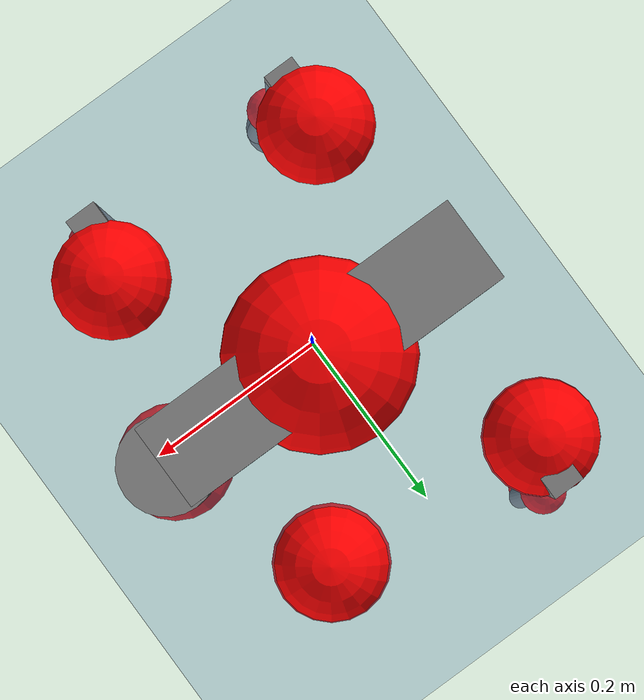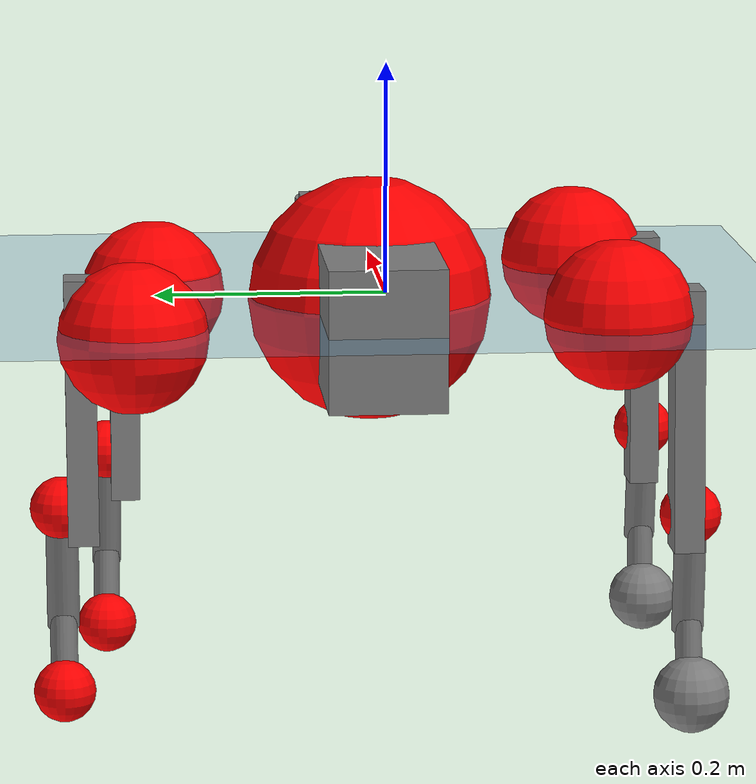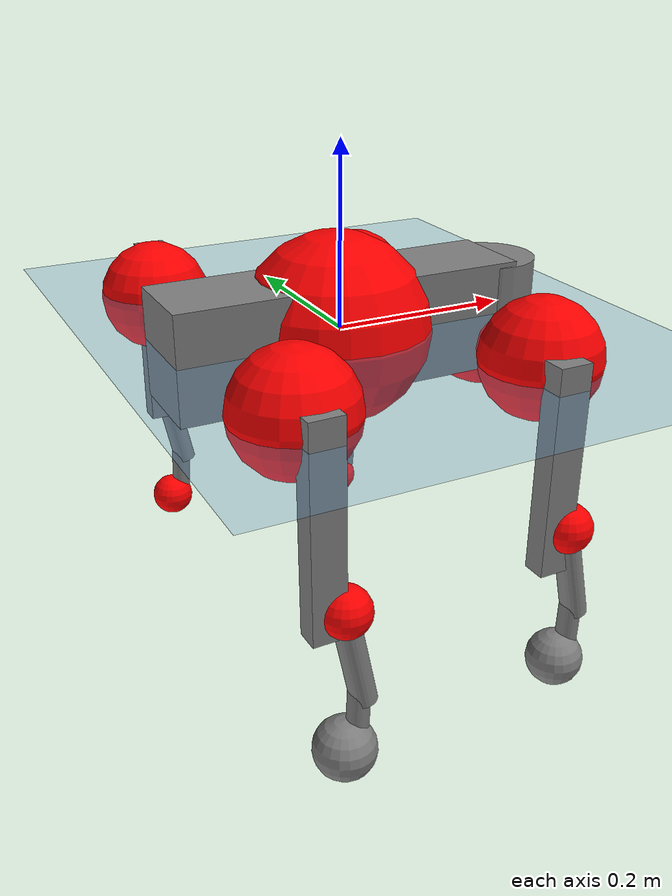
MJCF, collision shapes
<mujoco model="go2">
  <compiler angle="radian" assetdir="assets" balanceinertia="true" inertiafromgeom="false"/>

  <option timestep="0.005" density="1.2" viscosity="2e-05"/>

  <size nkey="1"/>

  <visual>
    <quality shadowsize="8192"/>
    <map shadowclip="0.5"/>
  </visual>

  <default>
    <default class="/">
      <geom contype="0" conaffinity="0" group="1" solref="-1000 -80"/>
      <site size="0.01 0.005 0.005" group="5"/>
      <general forcelimited="true" biastype="affine" gainprm="20" biasprm="0 -20 -0.5"/>
      <default class="go2">
        <joint armature="0.01" damping="0.01" frictionloss="0.2"/>
        <geom condim="1" margin="0.001"/>
        <default class="visual">
          <geom type="mesh" group="2"/>
        </default>
        <default class="collision">
          <geom group="3"/>
          <default class="foot">
            <geom size="0.022 0 0" condim="6" priority="1" friction="0.8 0.02 0.01" solimp="0.015 1 0.022"/>
          </default>
        </default>
        <default class="reward_collision_sphere">
          <geom group="5" rgba="1 0 0 1"/>
        </default>
      </default>
    </default>
  </default>

  <asset>
    <texture type="skybox" colorspace="auto" name="//unnamed_texture_0" builtin="gradient" rgb1="0.95 0.95 0.95" rgb2="0.95 0.95 0.95" width="100" height="600"/>
    <texture type="2d" colorspace="auto" name="texplane" builtin="checker" rgb1="0.345 0.575 0.748" rgb2="0.345 0.575 0.748" markrgb="1 1 1" width="512" height="512"/>
    <material name="MatPlane" class="/" texture="texplane" texuniform="true" texrepeat="2 2" specular="0.9"/>
    <material name="metal" class="/" rgba="0.9 0.95 0.95 1"/>
    <material name="black" class="/" rgba="0 0 0 1"/>
    <material name="white" class="/"/>
    <material name="gray" class="/" rgba="0.671705 0.692426 0.77427 1"/>
    <mesh name="base_0" class="/" file="base_0.obj"/>
    <mesh name="base_1" class="/" file="base_1.obj"/>
    <mesh name="base_2" class="/" file="base_2.obj"/>
    <mesh name="base_3" class="/" file="base_3.obj"/>
    <mesh name="base_4" class="/" file="base_4.obj"/>
    <mesh name="hip_0" class="/" file="hip_0.obj"/>
    <mesh name="hip_1" class="/" file="hip_1.obj"/>
    <mesh name="thigh_0" class="/" file="thigh_0.obj"/>
    <mesh name="thigh_1" class="/" file="thigh_1.obj"/>
    <mesh name="thigh_mirror_0" class="/" file="thigh_mirror_0.obj"/>
    <mesh name="thigh_mirror_1" class="/" file="thigh_mirror_1.obj"/>
    <mesh name="calf_0" class="/" file="calf_0.obj"/>
    <mesh name="calf_1" class="/" file="calf_1.obj"/>
    <mesh name="calf_mirror_0" class="/" file="calf_mirror_0.obj"/>
    <mesh name="calf_mirror_1" class="/" file="calf_mirror_1.obj"/>
    <mesh name="foot" class="/" file="foot.obj"/>
  </asset>

  <worldbody>
    <geom name="floor" class="/" size="100 100 0.125" type="plane" group="0" material="MatPlane"/>
    <light name="toplight_shadow" class="/" pos="0 0 5" dir="0.0990148 0.0990148 -0.990148" type="directional" ambient="0.04 0.04 0.04" diffuse="0.55 0.55 0.55" specular="0.12 0.12 0.12"/>
    <light name="toplight_fill" class="/" pos="0 0 5" dir="0.0990148 0.0990148 -0.990148" type="directional" castshadow="false" ambient="0.04 0.04 0.04" diffuse="0.3 0.3 0.3" specular="0.08 0.08 0.08"/>
    <body name="trunk" childclass="go2" pos="0.00139324 0.0139007 -0.0042071" quat="1 -0.000142119 -0.000153139 -6.17188e-05">
      <inertial pos="0.00669493 0.0146546 -0.000979662" quat="0.0579417 0.698866 -0.0719199 0.709264" mass="8.25052" diaginertia="0.0178192 1.8414 0.00573778"/>
      <joint name="//unnamed_joint_0" type="free" armature="0" damping="0" frictionloss="0"/>
      <geom name="//unnamed_geom_1" class="visual" material="black" mesh="base_0"/>
      <geom name="//unnamed_geom_2" class="visual" material="black" mesh="base_1"/>
      <geom name="//unnamed_geom_3" class="visual" material="black" mesh="base_2"/>
      <geom name="//unnamed_geom_4" class="visual" material="white" mesh="base_3"/>
      <geom name="//unnamed_geom_5" class="visual" material="gray" mesh="base_4"/>
      <geom name="trunk_1" class="collision" size="0.198931 0.0494418 0.060282" type="box"/>
      <geom name="trunk_2" class="collision" size="0.0528789 0.047591" pos="0.194699 0 0.00749937" type="cylinder"/>
      <geom name="trunk_3" class="collision" size="0.0497062" pos="0.200165 0 -0.0449962"/>
      <geom name="//unnamed_geom_9" class="reward_collision_sphere" size="0.105758"/>
      <geom name="//unnamed_geom_10" class="reward_collision_sphere" size="0.0634547" pos="0.191284 0 -0.0337472"/>
      <site name="imu" pos="-0.0852855 -0.0558746 0.10116" size="0.0105758"/>
      <camera name="track" pos="0 -3.47929 0" quat="0.707107 0.707107 0 0" mode="trackcom"/>
      <camera name="ego_camera" pos="0.213145 0 0.0337472" quat="-0.5 -0.5 0.5 0.5"/>
      <body name="FL_hip" pos="0.119787 0.062772 -0.0158397" quat="0.999974 0.00236665 0.00673239 -0.000714649">
        <inertial pos="0.0016579 0.00363181 -0.0104309" quat="0.503013 0.488816 0.494182 0.513636" mass="0.971273" diaginertia="0.00012793 0.0103226 0.000108196"/>
        <joint name="FL_hip_joint" pos="0 0 0" axis="0.999978 0.00196369 -0.00629406" range="-1.416 0.832614" armature="0.0130522" damping="0.0783651" frictionloss="0.0795902"/>
        <geom name="//unnamed_geom_11" class="visual" material="metal" mesh="hip_0"/>
        <geom name="//unnamed_geom_12" class="visual" material="gray" mesh="hip_1"/>
        <geom name="//unnamed_geom_13" class="collision" size="0.0486486 0.0211516" pos="0 0.139171 0" quat="0.707107 0.707107 0 0" type="cylinder"/>
        <geom name="//unnamed_geom_14" class="reward_collision_sphere" size="0.0634547" pos="0 0.121775 0"/>
        <body name="FL_thigh" pos="-0.00158 0.147925 0.00614204" quat="0.999979 0.00118198 0.00373136 0.00517219">
          <inertial pos="-0.0155204 -0.0504282 -0.0298956" quat="0.792179 0.0522858 -0.0393503 0.60677" mass="1.35724" diaginertia="0.000801873 0.0885073 0.000219077"/>
          <joint name="FL_thigh_joint" pos="0 0 0" axis="-0.0157748 0.997495 -0.0689573" range="-1.77163 3.15974" armature="0.00291111" damping="0" frictionloss="0.11928"/>
          <geom name="//unnamed_geom_15" class="visual" material="metal" mesh="thigh_0"/>
          <geom name="//unnamed_geom_16" class="visual" material="gray" mesh="thigh_1"/>
          <geom name="//unnamed_geom_17" class="collision" size="0.112632 0.0129553 0.0179788" pos="0 0 -0.0798683" quat="0.707107 0 0.707107 0" type="box"/>
          <body name="FL_calf" pos="0.00796359 0.0163906 -0.151021" quat="0.999986 0.0025332 0.00283665 -0.00378155">
            <inertial pos="-0.00789654 -0.000970946 -0.0883591" quat="0.708057 0.00408593 -0.00951337 0.706079" mass="0.297262" diaginertia="0.000254824 0.018044 1.50376e-05"/>
            <joint name="FL_calf_joint" pos="0 0 0" axis="0.00367515 0.999937 0.0106209" range="-2.37376 -0.875076" armature="0.0165061" damping="0.0192168" frictionloss="0.219679"/>
            <geom name="//unnamed_geom_18" class="visual" material="gray" mesh="calf_0"/>
            <geom name="//unnamed_geom_19" class="visual" material="black" mesh="calf_1"/>
            <geom name="FL_calf0" class="collision" size="0.0126909 0.0634547" pos="0.00546525 0 -0.0449962" quat="0.994493 0 -0.104807 0" type="cylinder"/>
            <geom name="//unnamed_geom_21" class="collision" size="0.0116334 0.0343713" pos="0.0136631 0 -0.110991" quat="0.999688 0 0.0249974 0" type="cylinder"/>
            <geom name="//unnamed_geom_22" class="visual" pos="0 0 -0.159737" quat="1 0 0 0" material="black" mesh="foot"/>
            <geom name="FL_foot" class="foot" size="0.0259135" pos="-0.00136631 0 -0.159737"/>
            <geom name="//unnamed_geom_24" class="reward_collision_sphere" size="0.0264395"/>
            <geom name="//unnamed_geom_25" class="reward_collision_sphere" size="0.0264395" pos="-0.00136631 0 -0.159737"/>
            <site name="FL_foot" class="foot" pos="-0.00136631 0 -0.159737" size="0.0105758"/>
          </body>
        </body>
      </body>
      <body name="FR_hip" pos="0.130191 -0.0708319 0.00934807" quat="1 -1.55757e-05 0.000197083 0.000274371">
        <inertial pos="0.00489397 -0.00993721 -0.00682048" quat="0.507071 0.494039 0.507657 0.491007" mass="0.907992" diaginertia="0.000136993 0.0111002 8.87886e-05"/>
        <joint name="FR_hip_joint" pos="0 0 0" axis="0.998118 -0.0504612 -0.0348552" stiffness="0.0414013" range="-1.02061 1.10374" armature="0.00698808" damping="0" frictionloss="0.12266"/>
        <geom name="//unnamed_geom_26" class="visual" pos="0 8.62191e-09 3.69812e-07" quat="4.63268e-05 1 0 0" material="metal" mesh="hip_0"/>
        <geom name="//unnamed_geom_27" class="visual" pos="0 1.39771e-08 -9.14685e-07" quat="4.63268e-05 1 0 0" material="gray" mesh="hip_1"/>
        <geom name="//unnamed_geom_28" class="collision" size="0.0486486 0.0211516" pos="0 -0.139171 0" quat="0.707107 0.707107 0 0" type="cylinder"/>
        <geom name="//unnamed_geom_29" class="reward_collision_sphere" size="0.0634547" pos="0 -0.121775 0"/>
        <body name="FR_thigh" pos="-0.0163765 -0.184067 -0.0112426" quat="0.999987 -0.00384108 0.000793676 0.00330014">
          <inertial pos="0.00772955 0.0567736 -0.0209442" quat="0.587989 0.0144744 0.0967376 0.802933" mass="0.931336" diaginertia="0.000686282 0.0750818 0.000188992"/>
          <joint name="FR_thigh_joint" pos="0 0 0" axis="0.0027287 -0.99999 -0.00351041" stiffness="0.0428666" range="-3.15586 1.58744" armature="0.00819861" damping="0" frictionloss="0.217547"/>
          <geom name="//unnamed_geom_30" class="visual" material="metal" mesh="thigh_mirror_0"/>
          <geom name="//unnamed_geom_31" class="visual" material="gray" mesh="thigh_mirror_1"/>
          <geom name="//unnamed_geom_32" class="collision" size="0.112632 0.0129553 0.0179788" pos="0 0 -0.0798683" quat="0.707107 0 0.707107 0" type="box"/>
          <body name="FR_calf" pos="0.01695 -0.00376471 -0.148021" quat="0.999971 -0.00154905 -0.00721768 -0.00191004">
            <inertial pos="-0.004433 5.8462e-05 -0.118746" quat="0.712579 -0.0614054 0.000762486 0.698899" mass="0.271235" diaginertia="0.00020395 0.0230721 1.13743e-05"/>
            <joint name="FR_calf_joint" pos="0 0 0" axis="-0.032426 -0.996031 -0.0828909" stiffness="0.0466715" range="0.731354 2.69219" armature="0.00256726" damping="0" frictionloss="0.371343"/>
            <geom name="//unnamed_geom_33" class="visual" material="gray" mesh="calf_mirror_0"/>
            <geom name="//unnamed_geom_34" class="visual" material="black" mesh="calf_mirror_1"/>
            <geom name="FR_calf0" class="collision" size="0.0137485 0.0634547" pos="0.00683156 0 -0.0449962" quat="0.995004 0 -0.0998334 0" type="cylinder"/>
            <geom name="//unnamed_geom_36" class="collision" size="0.0116334 0.0343713" pos="0.0136631 0 -0.110991" quat="0.999688 0 0.0249974 0" type="cylinder"/>
            <geom name="//unnamed_geom_37" class="visual" pos="0 0 -0.159737" quat="1 0 0 0" material="black" mesh="foot"/>
            <geom name="FR_foot" class="foot" size="0.0304174" pos="-0.00136631 0 -0.159737"/>
            <geom name="//unnamed_geom_39" class="reward_collision_sphere" size="0.0264395"/>
            <geom name="//unnamed_geom_40" class="reward_collision_sphere" size="0.0264395" pos="-0.00136631 0 -0.159737"/>
            <site name="FR_foot" class="foot" pos="-0.00136631 0 -0.159737" size="0.0105758"/>
          </body>
        </body>
      </body>
      <body name="RL_hip" pos="-0.136539 0.0858859 -0.00406968" quat="0.999991 -0.00357198 0.00178884 0.00113929">
        <inertial pos="0.00205731 0.0179913 -0.0109716" quat="0.490816 0.475012 0.513249 0.519653" mass="0.640874" diaginertia="0.000114675 0.0083238 0.000102563"/>
        <joint name="RL_hip_joint" pos="0 0 0" axis="-0.998931 0.0106892 -0.0449661" stiffness="0.0346608" range="-1.18019 1.23202" armature="0.00952616" damping="0" frictionloss="0.147251"/>
        <geom name="//unnamed_geom_41" class="visual" pos="5.8177e-10 0 1.1404e-07" quat="4.63268e-05 0 1 0" material="metal" mesh="hip_0"/>
        <geom name="//unnamed_geom_42" class="visual" pos="9.43118e-10 0 1.01137e-07" quat="4.63268e-05 0 1 0" material="gray" mesh="hip_1"/>
        <geom name="//unnamed_geom_43" class="collision" size="0.0486486 0.0211516" pos="0 0.139171 0" quat="0.707107 0.707107 0 0" type="cylinder"/>
        <geom name="//unnamed_geom_44" class="reward_collision_sphere" size="0.0634547" pos="0 0.121775 0"/>
        <body name="RL_thigh" pos="0.0118413 0.165756 0.0167893" quat="0.999995 0.0020772 0.00241157 -0.000458411">
          <inertial pos="-0.00388576 -0.0345045 -0.00759294" quat="0.835061 0.137319 -0.0123455 0.532602" mass="0.936045" diaginertia="0.000859557 0.0732656 0.000195544"/>
          <joint name="RL_thigh_joint" pos="0 0 0" axis="-0.00206419 0.999991 0.00357409" stiffness="0.018439" range="-0.246992 4.30089" armature="0.0148154" damping="0.083834" frictionloss="0.25702"/>
          <geom name="//unnamed_geom_45" class="visual" material="metal" mesh="thigh_0"/>
          <geom name="//unnamed_geom_46" class="visual" material="gray" mesh="thigh_1"/>
          <geom name="//unnamed_geom_47" class="collision" size="0.112632 0.0129553 0.0179788" pos="0 0 -0.0798683" quat="0.707107 0 0.707107 0" type="box"/>
          <body name="RL_calf" pos="0.0114912 0.0182085 -0.165476" quat="0.999994 -0.000116604 -0.00310145 0.00142266">
            <inertial pos="0.00847762 -0.00235966 -0.100921" quat="0.702756 0.00827104 0.00649622 0.711353" mass="0.208246" diaginertia="0.000153071 0.0207923 1.06896e-05"/>
            <joint name="RL_calf_joint" pos="0 0 0" axis="0.0445944 0.998041 0.0438876" range="-3.07888 -0.564194" armature="0.00939135" damping="0.0548224" frictionloss="0.23566"/>
            <geom name="//unnamed_geom_48" class="visual" material="gray" mesh="calf_0"/>
            <geom name="//unnamed_geom_49" class="visual" material="black" mesh="calf_1"/>
            <geom name="RL_calf0" class="collision" size="0.0137485 0.0634547" pos="0.00683156 0 -0.0449962" quat="0.995004 0 -0.0998334 0" type="cylinder"/>
            <geom name="//unnamed_geom_51" class="collision" size="0.0116334 0.0343713" pos="0.0136631 0 -0.110991" quat="0.999688 0 0.0249974 0" type="cylinder"/>
            <geom name="//unnamed_geom_52" class="visual" pos="0 0 -0.159737" quat="1 0 0 0" material="black" mesh="foot"/>
            <geom name="RL_foot" class="foot" size="0.0156096" pos="-0.00136631 0 -0.159737"/>
            <geom name="//unnamed_geom_54" class="reward_collision_sphere" size="0.0264395"/>
            <geom name="//unnamed_geom_55" class="reward_collision_sphere" size="0.0264395" pos="-0.00136631 0 -0.159737"/>
            <site name="RL_foot" class="foot" pos="-0.00136631 0 -0.159737" size="0.0105758"/>
          </body>
        </body>
      </body>
      <body name="RR_hip" pos="-0.140043 -0.0760156 0.00718532" quat="0.999971 -0.00712247 0.00262619 -0.000439125">
        <inertial pos="-0.00352623 -0.018413 0.012217" quat="0.483531 0.52008 0.507911 0.487586" mass="0.66157" diaginertia="9.38248e-05 0.0072705 7.77821e-05"/>
        <joint name="RR_hip_joint" pos="0 0 0" axis="-0.99697 -0.0776132 -0.00513448" range="-0.948758 1.37388" armature="0.0108264" damping="0.0460874" frictionloss="0.163509"/>
        <geom name="//unnamed_geom_56" class="visual" pos="-5.45193e-10 8.62191e-09 -2.55771e-07" quat="2.14617e-09 4.63268e-05 4.63268e-05 -1" material="metal" mesh="hip_0"/>
        <geom name="//unnamed_geom_57" class="visual" pos="-1.03359e-09 1.39771e-08 1.01582e-06" quat="2.14617e-09 4.63268e-05 4.63268e-05 -1" material="gray" mesh="hip_1"/>
        <geom name="//unnamed_geom_58" class="collision" size="0.0486486 0.0211516" pos="0 -0.139171 0" quat="0.707107 0.707107 0 0" type="cylinder"/>
        <geom name="//unnamed_geom_59" class="reward_collision_sphere" size="0.0634547" pos="0 -0.121775 0"/>
        <body name="RR_thigh" pos="-0.001959 -0.179074 -0.0110372" quat="0.999968 0.000452112 -0.00612073 0.00505556">
          <inertial pos="-0.00288987 0.0548649 -0.0360102" quat="0.575473 -0.00528133 0.0834915 0.81353" mass="1.49576" diaginertia="0.000961149 0.102721 0.0002402"/>
          <joint name="RR_thigh_joint" pos="0 0 0" axis="0.0285071 -0.99655 0.0779432" stiffness="0.04328" range="-4.64967 0.30265" armature="0.0121476" damping="0" frictionloss="0.149756"/>
          <geom name="//unnamed_geom_60" class="visual" material="metal" mesh="thigh_mirror_0"/>
          <geom name="//unnamed_geom_61" class="visual" material="gray" mesh="thigh_mirror_1"/>
          <geom name="//unnamed_geom_62" class="collision" size="0.112632 0.0129553 0.0179788" pos="0 0 -0.0798683" quat="0.707107 0 0.707107 0" type="box"/>
          <body name="RR_calf" pos="0.0189505 -0.00674624 -0.167446" quat="0.999988 -0.00282849 0.00365749 -0.00178738">
            <inertial pos="-0.0141776 0.000677282 -0.0985254" quat="0.68343 -0.0169521 0.0341199 0.729021" mass="0.290817" diaginertia="0.000172211 0.0248781 1.13191e-05"/>
            <joint name="RR_calf_joint" pos="0 0 0" axis="-0.0623419 -0.996513 0.0554619" stiffness="0.0526075" range="1.13716 2.39268" armature="0.0188604" damping="0.0126899" frictionloss="0.190417"/>
            <geom name="//unnamed_geom_63" class="visual" material="gray" mesh="calf_mirror_0"/>
            <geom name="//unnamed_geom_64" class="visual" material="black" mesh="calf_mirror_1"/>
            <geom name="RR_calf0" class="collision" size="0.0137485 0.0634547" pos="0.00683156 0 -0.0449962" quat="0.995004 0 -0.0998334 0" type="cylinder"/>
            <geom name="//unnamed_geom_66" class="collision" size="0.0116334 0.0343713" pos="0.0136631 0 -0.110991" quat="0.999688 0 0.0249974 0" type="cylinder"/>
            <geom name="//unnamed_geom_67" class="visual" pos="0 0 -0.159737" quat="1 0 0 0" material="black" mesh="foot"/>
            <geom name="RR_foot" class="foot" size="0.0329935" pos="-0.00136631 0 -0.159737"/>
            <geom name="//unnamed_geom_69" class="reward_collision_sphere" size="0.0264395"/>
            <geom name="//unnamed_geom_70" class="reward_collision_sphere" size="0.0264395" pos="-0.00136631 0 -0.159737"/>
            <site name="RR_foot" class="foot" pos="-0.00136631 0 -0.159737" size="0.0105758"/>
          </body>
        </body>
      </body>
    </body>
  </worldbody>

  <contact>
    <pair class="/" geom1="floor" geom2="FL_foot" name="//unnamed_contact_0"/>
    <pair class="/" geom1="floor" geom2="FR_foot" name="//unnamed_contact_1"/>
    <pair class="/" geom1="floor" geom2="RL_foot" name="//unnamed_contact_2"/>
    <pair class="/" geom1="floor" geom2="RR_foot" name="//unnamed_contact_3"/>
  </contact>

  <actuator>
    <general name="FL_hip" class="/" joint="FL_hip_joint" forcerange="-7.8517 7.8517" gainprm="12.3608" biasprm="0 -12.3608 -0.413564"/>
    <general name="FL_thigh" class="/" joint="FL_thigh_joint" forcerange="-36.8483 36.8483" gainprm="12.3608" biasprm="0 -12.3608 -0.413564"/>
    <general name="FL_calf" class="/" joint="FL_calf_joint" forcerange="-62.0799 62.0799" gainprm="12.3608" biasprm="0 -12.3608 -0.413564"/>
    <general name="FR_hip" class="/" joint="FR_hip_joint" forcerange="-9.42815 9.42815" gainprm="12.3608" biasprm="0 -12.3608 -0.413564"/>
    <general name="FR_thigh" class="/" joint="FR_thigh_joint" forcerange="-9.39495 9.39495" gainprm="12.3608" biasprm="0 -12.3608 -0.413564"/>
    <general name="FR_calf" class="/" joint="FR_calf_joint" forcerange="-25.8139 25.8139" gainprm="12.3608" biasprm="0 -12.3608 -0.413564"/>
    <general name="RL_hip" class="/" joint="RL_hip_joint" forcerange="-31.355 31.355" gainprm="12.3608" biasprm="0 -12.3608 -0.413564"/>
    <general name="RL_thigh" class="/" joint="RL_thigh_joint" forcerange="-20.4892 20.4892" gainprm="12.3608" biasprm="0 -12.3608 -0.413564"/>
    <general name="RL_calf" class="/" joint="RL_calf_joint" forcerange="-68.6118 68.6118" gainprm="12.3608" biasprm="0 -12.3608 -0.413564"/>
    <general name="RR_hip" class="/" joint="RR_hip_joint" forcerange="-41.4562 41.4562" gainprm="12.3608" biasprm="0 -12.3608 -0.413564"/>
    <general name="RR_thigh" class="/" joint="RR_thigh_joint" forcerange="-29.828 29.828" gainprm="12.3608" biasprm="0 -12.3608 -0.413564"/>
    <general name="RR_calf" class="/" joint="RR_calf_joint" forcerange="-47.8975 47.8975" gainprm="12.3608" biasprm="0 -12.3608 -0.413564"/>
  </actuator>

  <sensor>
    <gyro site="imu" name="imu_angular_velocity"/>
    <velocimeter site="imu" name="imu_linear_velocity"/>
    <framelinvel objtype="site" objname="FL_foot" name="FL_foot_global_linear_velocity"/>
    <framelinvel objtype="site" objname="FR_foot" name="FR_foot_global_linear_velocity"/>
    <framelinvel objtype="site" objname="RL_foot" name="RL_foot_global_linear_velocity"/>
    <framelinvel objtype="site" objname="RR_foot" name="RR_foot_global_linear_velocity"/>
  </sensor>

  <keyframe>
    <key name="home" qpos="0 0 0.325 1 0 0 0 0.1 0.8 -1.5 -0.1 -0.8 1.5 -0.1 0.8 -1.5 0.1 -0.8 1.5"/>
  </keyframe>
</mujoco>
